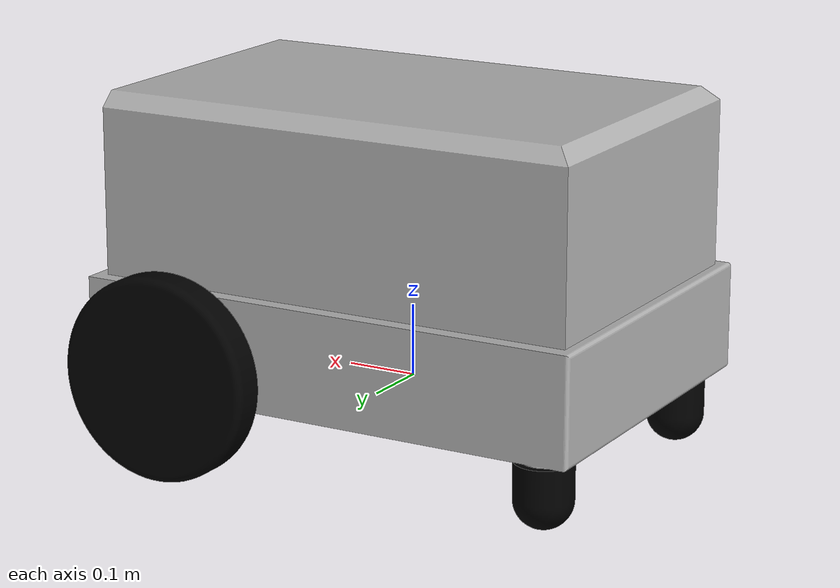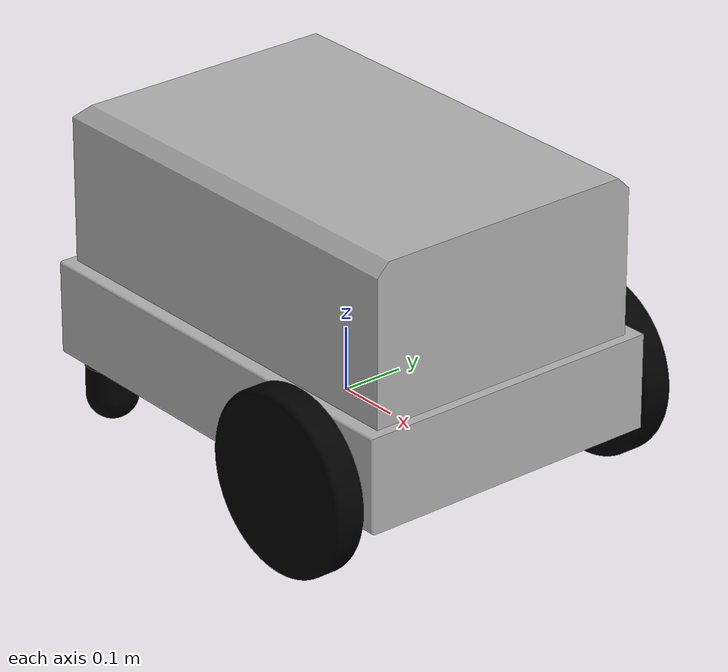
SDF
<?xml version="1.0" ?>
<sdf version="1.9">
  <model name="donar_robot">

    <!-- PLUGINS -->
    <plugin filename="ignition-gazebo-joint-state-publisher-system"
            name="ignition::gazebo::systems::JointStatePublisher">
      <topic>/joint_states</topic>
      <update_rate>50</update_rate>
    </plugin>

    <plugin filename="ignition-gazebo-odometry-publisher-system"
            name="ignition::gazebo::systems::OdometryPublisher">
      <odom_topic>/donar_robot/odometry</odom_topic>
      <odom_frame>odom</odom_frame>
      <robot_base_frame>base_link</robot_base_frame>
      <odom_publish_frequency>50</odom_publish_frequency>
    </plugin>

    <plugin filename="ignition-gazebo-diff-drive-system"
        name="ignition::gazebo::systems::DiffDrive">
      <left_joint>left_wheel_joint</left_joint>
      <right_joint>right_wheel_joint</right_joint>
      <wheel_separation>0.52</wheel_separation>
      <wheel_radius>0.14</wheel_radius>
      <max_linear_velocity>3</max_linear_velocity>
      <min_linear_velocity>-3</min_linear_velocity>
      <max_angular_velocity>3.0</max_angular_velocity>
      <min_angular_velocity>-3.0</min_angular_velocity>
      <max_linear_acceleration>2.0</max_linear_acceleration>
      <topic>/donar_robot/cmd_vel</topic>
      <odom_topic>odometry</odom_topic>
      <frame_id>odom</frame_id>
      <child_frame_id>base_link</child_frame_id>
      <odom_publish_frequency>50</odom_publish_frequency>

      <tf_topic>/tf</tf_topic>

    </plugin>

    <!-- BASE LINK -->
    <link name="base_link">
      <pose>0 0 0 0 0 0</pose>
      <inertial>
        <pose>0.00013095962477824982 1.4938322527424564e-05 0.19291134702067492 0 0 0</pose>
        <mass>35.0</mass>
        <inertia>
          <ixx>4.525119</ixx><ixy>-4.4e-05</ixy><ixz>-0.008986</ixz>
          <iyy>7.683395</iyy><iyz>0.000243</iyz><izz>8.427305</izz>
        </inertia>
      </inertial>
      <visual name="base_link_visual">
        <geometry>
          <mesh>
            <scale>0.001 0.001 0.001</scale>
            <uri>../../meshes/base_link.stl</uri>
          </mesh>
        </geometry>
      <material>
        <ambient>0.7 0.7 0.7 1.0</ambient>
        <diffuse>0.7 0.7 0.7 1.0</diffuse>
        <specular>0.1 0.1 0.1 1.0</specular>
      </material>
      </visual>
      <collision name="base_link_collision">
        <geometry>
          <mesh>
            <scale>0.001 0.001 0.001</scale>
            <uri>../../meshes/base_link.stl</uri>
          </mesh>
        </geometry>
      </collision>
    </link>

    <!-- RIGHT WHEEL -->
    <link name="right_wheel_1">
      <pose relative_to="base_link">0.221 -0.26 0.04 0 0 0</pose>
      <inertial>
        <pose>0.0 -0.025 0.0 0 0 0</pose>
        <mass>2.0</mass>
        <inertia>
          <ixx>0.016277</ixx><ixy>0.0</ixy><ixz>0.0</ixz>
          <iyy>0.031234</iyy><iyz>0.0</iyz><izz>0.016277</izz>
        </inertia>
      </inertial>
      <visual name="right_wheel_visual">
        <pose>-0.221 0.26 -0.04 0 0 0</pose>
        <geometry>
          <mesh>
            <scale>0.001 0.001 0.001</scale>
            <uri>../../meshes/right_wheel_1.stl</uri>
          </mesh>
        </geometry>
        <material>
          <ambient>0.0 0.0 0.0 1.0</ambient>
          <diffuse>0.0 0.0 0.0 1.0</diffuse>
          <specular>0.1 0.1 0.1 1.0</specular>
        </material>
      </visual>
      <collision name="right_wheel_collision">
        <pose>-0.221 0.26 -0.04 0 0 0</pose>
        <geometry>
          <mesh>
            <scale>0.001 0.001 0.001</scale>
            <uri>../../meshes/right_wheel_1.stl</uri>
          </mesh>
        </geometry>
        <surface>
          <friction><ode><mu>1.0</mu><mu2>1.0</mu2></ode></friction>
        </surface>
      </collision>
    </link>

    <joint name="right_wheel_joint" type="revolute">
      <parent>base_link</parent>
      <child>right_wheel_1</child>
      <axis>
        <xyz>0.0 1.0 0.0</xyz>
        <limit><lower>-1e16</lower><upper>1e16</upper></limit>
      </axis>
    </joint>

    <!-- LEFT WHEEL -->
    <link name="left_wheel_1">
      <pose relative_to="base_link">0.221 0.26 0.04 0 0 0</pose>
      <inertial>
        <pose>0.0 0.025 0.0 0 0 0</pose>
        <mass>2.0</mass>
        <inertia>
          <ixx>0.016277</ixx><ixy>0.0</ixy><ixz>0.0</ixz>
          <iyy>0.031234</iyy><iyz>0.0</iyz><izz>0.016277</izz>
        </inertia>
      </inertial>
      <visual name="left_wheel_visual">
        <pose>-0.221 -0.26 -0.04 0 0 0</pose>
        <geometry>
          <mesh>
            <scale>0.001 0.001 0.001</scale>
            <uri>../../meshes/left_wheel_1.stl</uri>
          </mesh>
        </geometry>
        <material>
          <ambient>0.0 0.0 0.0 1.0</ambient>
          <diffuse>0.0 0.0 0.0 1.0</diffuse>
          <specular>0.1 0.1 0.1 1.0</specular>
        </material>
      </visual>
      <collision name="left_wheel_collision">
        <pose>-0.221 -0.26 -0.04 0 0 0</pose>
        <geometry>
          <mesh>
            <scale>0.001 0.001 0.001</scale>
            <uri>../../meshes/left_wheel_1.stl</uri>
          </mesh>
        </geometry>
        <surface>
          <friction><ode><mu>1.0</mu><mu2>1.0</mu2></ode></friction>
        </surface>
      </collision>
    </link>

    <joint name="left_wheel_joint" type="revolute">
      <parent>base_link</parent>
      <child>left_wheel_1</child>
      <axis>
        <xyz>0.0 1.0 0.0</xyz>
        <limit><lower>-1e16</lower><upper>1e16</upper></limit>
      </axis>
    </joint>

    <!-- LEFT CASTER (NEW SIMPLIFIED) -->
    <link name="left_caster_wheel_1">
      <!-- Position: -0.304, 0.2, -0.01 from base_link -->
      <pose relative_to="base_link">-0.304 0.2 -0.01 0 0 0</pose>
      <inertial>
        <!-- Inertial from new design -->
        <pose>0.0 0.0 -0.03891304347826075 0 0 0</pose>
        <mass>0.408490820770769</mass>
        <inertia>
          <ixx>0.000369</ixx><iyy>0.000369</iyy><izz>0.000304</izz>
          <ixy>0.0</ixy><ixz>0.0</ixz><iyz>0.0</iyz>
        </inertia>
      </inertial>

      <!-- Visual mesh -->
      <visual name="left_caster_visual">
        <pose>0.304 -0.2 0.01 0 0 0</pose>
        <geometry>
          <mesh>
            <scale>0.001 0.001 0.001</scale>
            <uri>../../meshes/left_caster_wheel_1.stl</uri>
          </mesh>
        </geometry>
        <material>
          <ambient>0.0 0.0 0.0 1.0</ambient>
          <diffuse>0.0 0.0 0.0 1.0</diffuse>
          <specular>0.1 0.1 0.1 1.0</specular>
        </material>
      </visual>

      <!-- Sphere collision for stable physics -->
      <collision name="left_caster_collision">
        <pose>0.0 0.0 -0.05 0 0 0</pose>
        <geometry>
          <sphere><radius>0.04</radius></sphere>
        </geometry>
        <surface>
          <friction>
            <ode>
              <mu>0.01</mu>
              <mu2>0.01</mu2>
            </ode>
          </friction>
          <contact>
            <ode>
              <soft_cfm>0.0001</soft_cfm>
              <soft_erp>0.2</soft_erp>
              <kp>1000000.0</kp>
              <kd>100.0</kd>
            </ode>
          </contact>
        </surface>
      </collision>
    </link>

    <joint name="left_caster_joint" type="fixed">
      <parent>base_link</parent>
      <child>left_caster_wheel_1</child>
    </joint>

    <!-- RIGHT CASTER (NEW SIMPLIFIED) -->
    <link name="right_caster_wheel_1">
      <!-- Position: -0.304, -0.2, -0.01 from base_link -->
      <pose relative_to="base_link">-0.304 -0.2 -0.01 0 0 0</pose>
      <inertial>
        <!-- Inertial from new design -->
        <pose>0.0 0.0 -0.03891304347826075 0 0 0</pose>
        <mass>0.408490820770769</mass>
        <inertia>
          <ixx>0.000369</ixx><iyy>0.000369</iyy><izz>0.000304</izz>
          <ixy>0.0</ixy><ixz>0.0</ixz><iyz>0.0</iyz>
        </inertia>
      </inertial>

      <!-- Visual mesh -->
      <visual name="right_caster_visual">
        <pose>0.304 0.2 0.01 0 0 0</pose>
        <geometry>
          <mesh>
            <scale>0.001 0.001 0.001</scale>
            <uri>../../meshes/right_caster_wheel_1.stl</uri>
          </mesh>
        </geometry>
        <material>
          <ambient>0.0 0.0 0.0 1.0</ambient>
          <diffuse>0.0 0.0 0.0 1.0</diffuse>
          <specular>0.1 0.1 0.1 1.0</specular>
        </material>
      </visual>

      <!-- Sphere collision for stable physics -->
      <collision name="right_caster_collision">
        <pose>0.0 0.0 -0.05 0 0 0</pose>
        <geometry>
          <sphere><radius>0.04</radius></sphere>
        </geometry>
        <surface>
          <friction>
            <ode>
              <mu>0.01</mu>
              <mu2>0.01</mu2>
            </ode>
          </friction>
          <contact>
            <ode>
              <soft_cfm>0.0001</soft_cfm>
              <soft_erp>0.2</soft_erp>
              <kp>1000000.0</kp>
              <kd>100.0</kd>
            </ode>
          </contact>
        </surface>
      </collision>
    </link>

    <joint name="right_caster_joint" type="fixed">
      <parent>base_link</parent>
      <child>right_caster_wheel_1</child>
    </joint>

  </model>
</sdf>
